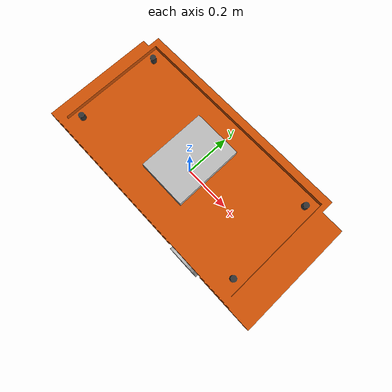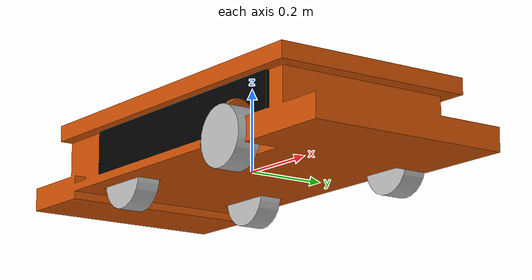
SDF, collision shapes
<?xml version="1.0"?>
<sdf version="1.6">
  <model name="logistic_ackermann_robot">
    <pose>0 0 0.0 0 0 0</pose>

    <link name='base_link' />

    <joint name='chassis_link_joint' type='fixed'>
      <pose>0.0 0.0 0.0 0 0 0</pose>
      <parent>base_link</parent>
      <child>chassis_link</child>
    </joint>

    <link name='chassis_link'>
      <inertial>
        <pose>0.07307 -1e-06 0.65096 0 0 0</pose>
        <mass>1580</mass>
        <inertia>
          <ixx>442.769</ixx>
          <ixy>3e-05</ixy>
          <ixz>62.5206</ixz>
          <iyy>1997.86</iyy>
          <iyz>1e-06</iyz>
          <izz>2238.05</izz>
        </inertia>
      </inertial>
      <collision name='chassis_link_collision'>
        <pose>0 0 0.0 0 0 -1.5707963</pose>
        <geometry>
          <mesh>
            <scale>0.5 0.5 0.5</scale>
            <uri>model://logistic_ackermann_robot/meshes/chassis.dae</uri>
          </mesh>
        </geometry>
        <surface>
          <contact>
            <ode />
          </contact>
          <friction>
            <ode>
              <mu>0.2</mu>
              <mu2>0.2</mu2>
            </ode>
          </friction>
        </surface>
      </collision>
      <visual name='chassis_link_visual'>
        <pose>0 0 0.0 0 0 -1.5707963</pose>
        <geometry>
          <mesh>
            <scale>0.5 0.5 0.5</scale>
            <uri>model://logistic_ackermann_robot/meshes/chassis.dae</uri>
          </mesh>
        </geometry>
      </visual>
      <self_collide>1</self_collide>
    </link>

    <joint name='bl_axle' type='revolute'>
      <pose relative_to='chassis_link'>-0.244 0.18 0.0 0 0 0</pose>
      <parent>chassis_link</parent>
      <child>bl_1</child>
      <axis>
        <xyz>0 1 0</xyz>
        <dynamics>
          <friction>12.0316061502</friction>
        </dynamics>
      </axis>
    </joint>
    <link name='bl_1'>
      <pose relative_to='bl_axle'>0 0 0 0 0 0</pose>
      <inertial>
        <pose>0 0 0 0 0 0</pose>
        <mass>24.5</mass>
        <inertia>
          <ixx>1.04961</ixx>
          <ixy>0</ixy>
          <ixz>0</ixz>
          <iyy>1.84514</iyy>
          <iyz>0</iyz>
          <izz>1.04961</izz>
        </inertia>
      </inertial>
      <collision name='bl_1_collision'>
        <pose>0 0 0 1.5707963 0 0</pose>
        <geometry>
          <cylinder>
            <radius>.072</radius>
            <length>.06</length>
          </cylinder>
        </geometry>
        <surface>
          <contact>
            <ode />
          </contact>
          <friction>
            <ode>
              <mu>1e+6</mu>
              <mu2>1e+6</mu2>
            </ode>
          </friction>
        </surface>
      </collision>
      <visual name='bl_1_visual'>
        <pose>0 0 0.0 0 0 -1.5707963</pose>
        <geometry>
          <mesh>
            <scale>0.5 0.5 0.5</scale>
            <uri>model://logistic_ackermann_robot/meshes/wheel.dae</uri>
          </mesh>
        </geometry>
      </visual>
      <self_collide>0</self_collide>
    </link>

    <joint name='br_axle' type='revolute'>
      <pose relative_to='chassis_link'>-0.244 -0.18 0.0 0 0 0</pose>
      <parent>chassis_link</parent>
      <child>br_1</child>
      <axis>
        <xyz>0 1 0</xyz>
        <dynamics>
          <friction>12.0316061502</friction>
        </dynamics>
      </axis>
    </joint>
    <link name='br_1'>
      <pose relative_to='br_axle'>0 0 0 0 0 0</pose>
      <inertial>
        <pose>0 0.0377 0 0 0 0</pose>
        <mass>24.5</mass>
        <inertia>
          <ixx>1.04961</ixx>
          <ixy>0</ixy>
          <ixz>0</ixz>
          <iyy>1.84514</iyy>
          <iyz>0</iyz>
          <izz>1.04961</izz>
        </inertia>
      </inertial>
      <collision name='br_1_collision'>
        <pose>0 0 0 1.5707963 0 0</pose>
        <geometry>
          <cylinder>
            <radius>.072</radius>
            <length>.06</length>
          </cylinder>
        </geometry>
        <surface>
          <contact>
            <ode />
          </contact>
          <friction>
            <ode>
              <mu>1e+6</mu>
              <mu2>1e+6</mu2>
            </ode>
          </friction>
        </surface>
      </collision>
      <visual name='br_1_visual'>
        <pose>0 0 0.0 0 0 -1.5707963</pose>
        <geometry>
          <mesh>
            <scale>0.5 0.5 0.5</scale>
            <uri>model://logistic_ackermann_robot/meshes/wheel.dae</uri>
          </mesh>
        </geometry>
      </visual>
      <self_collide>0</self_collide>
    </link>

    <joint name='l_steer' type='revolute'>
      <pose relative_to='chassis_link'>0.244 0.236 0.0 0 0 0</pose>
      <parent>chassis_link</parent>
      <child>l_steer_1</child>
      <axis>
        <xyz>0 0 1</xyz>
        <limit>
          <lower>-0.95</lower>
          <upper>0.95</upper>
          <effort>1e6</effort>
          <velocity>10</velocity>
        </limit>
        <dynamics>
          <friction>18.0474092253</friction>
        </dynamics>
      </axis>
    </joint>
    <link name='l_steer_1'>
      <pose relative_to='l_steer'>0 0 0 0 0 0</pose>
      <inertial>
        <pose>0 -0.003381 0.02162 0 0 0</pose>
        <mass>1</mass>
        <inertia>
          <ixx>1</ixx>
          <ixy>0</ixy>
          <ixz>0</ixz>
          <iyy>1</iyy>
          <iyz>0</iyz>
          <izz>1</izz>
        </inertia>
      </inertial>
      <self_collide>0</self_collide>
    </link>

    <joint name='fl_axle' type='revolute'>
      <pose relative_to='l_steer_1'>0 0 0 0 0 0</pose>
      <parent>l_steer_1</parent>
      <child>fl_1</child>
      <axis>
        <xyz>0 1 0</xyz>
        <dynamics>
          <friction>12.0316061502</friction>
        </dynamics>
      </axis>
    </joint>
    <link name='fl_1'>
      <pose relative_to='fl_axle'>0 0 0 0 0 0</pose>
      <inertial>
        <pose>0 0.0377 0 0 0 0</pose>
        <mass>24.5</mass>
        <inertia>
          <ixx>1.04961</ixx>
          <ixy>0</ixy>
          <ixz>0</ixz>
          <iyy>1.84514</iyy>
          <iyz>0</iyz>
          <izz>1.04961</izz>
        </inertia>
      </inertial>
      <collision name='fl_1_collision'>
        <pose>0 0 0 1.5707963 0 0</pose>
        <geometry>
          <cylinder>
            <radius>.072</radius>
            <length>.06</length>
          </cylinder>
        </geometry>
        <surface>
          <contact>
            <ode />
          </contact>
          <friction>
            <ode>
              <mu>1e+6</mu>
              <mu2>1e+6</mu2>
            </ode>
          </friction>
        </surface>
      </collision>
      <visual name='fl_1_visual'>
        <pose>0 0 0.0 0 0 -1.5707963</pose>
        <geometry>
          <mesh>
            <scale>0.5 0.5 0.5</scale>
            <uri>model://logistic_ackermann_robot/meshes/wheel.dae</uri>
          </mesh>
        </geometry>
      </visual>
      <self_collide>0</self_collide>
    </link>

    <joint name='r_steer' type='revolute'>
      <pose relative_to='chassis_link'>0.244 -0.236 0.0 0 0 0</pose>
      <parent>chassis_link</parent>
      <child>r_steer_1</child>
      <axis>
        <xyz>0 0 1</xyz>
        <limit>
          <lower>-0.95</lower>
          <upper>0.95</upper>
          <effort>1e6</effort>
          <velocity>10</velocity>
        </limit>
        <dynamics>
          <damping>0.01</damping>
          <friction>18.0474092253</friction>
        </dynamics>
      </axis>
    </joint>
    <link name='r_steer_1'>
      <pose relative_to='r_steer'>0 0 0 0 0 0</pose>
      <inertial>
        <pose>0 -0.003381 0.02162 0 0 0</pose>
        <mass>1</mass>
        <inertia>
          <ixx>1</ixx>
          <ixy>0</ixy>
          <ixz>0</ixz>
          <iyy>1</iyy>
          <iyz>0</iyz>
          <izz>1</izz>
        </inertia>
      </inertial>
      <self_collide>0</self_collide>
    </link>

    <joint name='fr_axle' type='revolute'>
      <pose relative_to='r_steer_1'>0 0 0 0 0 0</pose>
      <parent>r_steer_1</parent>
      <child>fr_1</child>
      <axis>
        <xyz>0 1 0</xyz>
        <dynamics>
          <friction>12.0316061502</friction>
        </dynamics>
      </axis>
    </joint>
    <link name='fr_1'>
      <pose relative_to='fr_axle'>0 0 0 0 0 0</pose>
      <inertial>
        <pose>0 0.0377 0 0 0 0</pose>
        <mass>24.5</mass>
        <inertia>
          <ixx>1.04961</ixx>
          <ixy>0</ixy>
          <ixz>0</ixz>
          <iyy>1.84514</iyy>
          <iyz>0</iyz>
          <izz>1.04961</izz>
        </inertia>
      </inertial>
      <collision name='fr_1_collision'>
        <pose>0 0 0 1.5707963 0 0</pose>
        <geometry>
          <cylinder>
            <radius>.072</radius>
            <length>.06</length>
          </cylinder>
        </geometry>
        <surface>
          <contact>
            <ode />
          </contact>
          <friction>
            <ode>
              <mu>1e+6</mu>
              <mu2>1e+6</mu2>
            </ode>
          </friction>
        </surface>
      </collision>
      <visual name='fr_1_visual'>
        <pose>0 0 0.0 0 0 -1.5707963</pose>
        <geometry>
          <mesh>
            <scale>0.5 0.5 0.5</scale>
            <uri>model://logistic_ackermann_robot/meshes/wheel.dae</uri>
          </mesh>
        </geometry>
      </visual>
      <self_collide>0</self_collide>
    </link>

    <joint name="lift_joint" type="prismatic">
      <parent>base_link</parent>
      <child>lift_link</child>
      <axis>
        <xyz>0 0 1</xyz>
        <limit>
          <lower>0.0</lower>
          <upper>0.25</upper>
          <effort>100</effort>
          <velocity>0.5</velocity>
        </limit>
        <dynamics>
          <damping>0.1</damping>
          <friction>0</friction>
          <spring_reference>0</spring_reference>
          <spring_stiffness>0</spring_stiffness>
        </dynamics>
        <use_parent_model_frame>1</use_parent_model_frame>
      </axis>
      <physics>
        <provide_feedback>1</provide_feedback>
        <ode>
          <implicit_spring_damper>1</implicit_spring_damper>
          <cfm_damping>1</cfm_damping>
          <limit>
            <cfm>0</cfm>
            <erp>0.2</erp>
          </limit>
        </ode>
      </physics>
    </joint>

    <link name="lift_link">
      <pose relative_to='chassis_link'>0.0 0.0 0.165 0 0 0</pose>
      <inertial>
        <inertia>
          <ixx>0.001</ixx>
          <ixy>0.000</ixy>
          <ixz>0.000</ixz>
          <iyy>0.001</iyy>
          <iyz>0.000</iyz>
          <izz>0.001</izz>
        </inertia>
        <mass>0.1</mass>
      </inertial>
      <visual name="lift_visual">
        <pose>0 0 0 0 0 -1.5707963</pose>
        <geometry>
          <mesh>
            <uri>model://logistic_ackermann_robot/meshes/platform.dae</uri>
            <scale>0.5 0.5 0.5</scale>
          </mesh>
        </geometry>
      </visual>
      <collision name="lift_collision">
        <pose>0 0 0 0 0 -1.5707963</pose>
        <geometry>
          <box>
            <size>0.2805 0.2 0.03</size>
          </box>
        </geometry>
        <surface>
          <friction>
            <ode>
              <mu>1000000</mu>
              <mu2>100000</mu2>
              <fdir1>0 0 0</fdir1>
              <slip1>0.0</slip1>
              <slip2>0.0</slip2>
            </ode>
          </friction>
          <contact>
            <ode>
              <soft_cfm>0</soft_cfm>
              <soft_erp>0.2</soft_erp>
              <kp>1e+7</kp>
              <kd>100</kd>
              <max_vel>0.001</max_vel>
              <min_depth>0.005</min_depth>
            </ode>
          </contact>
        </surface>
      </collision>
    </link>

    <plugin filename="gz-sim-ackermann-steering-system" name="gz::sim::systems::AckermannSteering">
      <left_joint>bl_axle</left_joint>
      <right_joint>br_axle</right_joint>
      <left_steering_joint>l_steer</left_steering_joint>
      <right_steering_joint>r_steer</right_steering_joint>
      <kingpin_width>0.472</kingpin_width>
      <steering_limit>0.64</steering_limit>
      <wheel_base>0.488</wheel_base>
      <wheel_separation>0.36</wheel_separation>
      <wheel_radius>0.072</wheel_radius>
      <topic>/cmd_vel</topic>
      <odom_topic>/model/amazon_robot/odometry_noisy</odom_topic>
      <tf_topic>/model/amazon_robot/tf_noisy</tf_topic>
      <odom_publish_frequency>50</odom_publish_frequency>
    </plugin>

    <plugin filename="gz-sim-odometry-publisher-system" name="gz::sim::systems::OdometryPublisher">
      <odom_frame>odom</odom_frame>
      <robot_base_frame>base_link</robot_base_frame>
      <odom_publish_frequency>50</odom_publish_frequency>
      <odom_topic>/model/amazon_robot/odometry</odom_topic>
      <dimensions>3</dimensions>
    </plugin>

    <plugin filename="gz-sim-joint-controller-system" name="gz::sim::systems::JointController">
      <joint_name>lift_joint</joint_name>
      <topic>/platform/cmd_vel</topic>
      <initial_position>0.0</initial_position>
      <use_force_commands>true</use_force_commands>
      <p_gain>5.0</p_gain>
      <i_gain>0.0</i_gain>
      <d_gain>0.1</d_gain>
      <cmd_max>100</cmd_max>
      <cmd_min>-100</cmd_min>
      <disable_braking>0</disable_braking>
    </plugin>

    <plugin filename="gz-sim-joint-state-publisher-system" name="gz::sim::systems::JointStatePublisher">
      <topic>/robot/joint_state</topic>
      <joint_name>lift_joint</joint_name>
    </plugin>
  </model>
</sdf>
